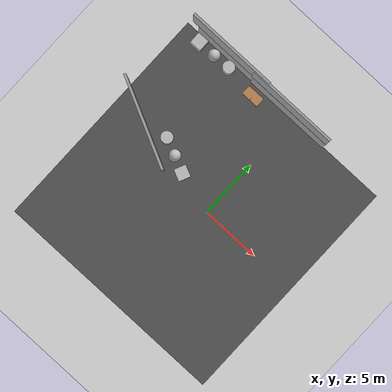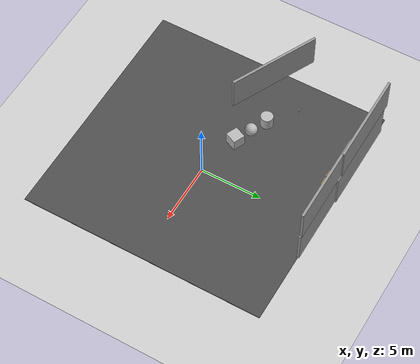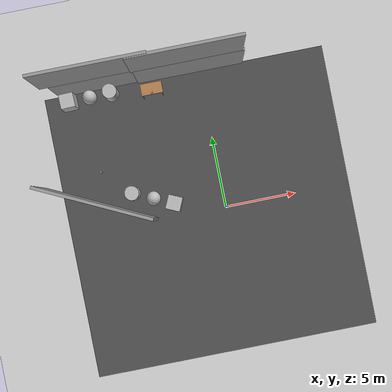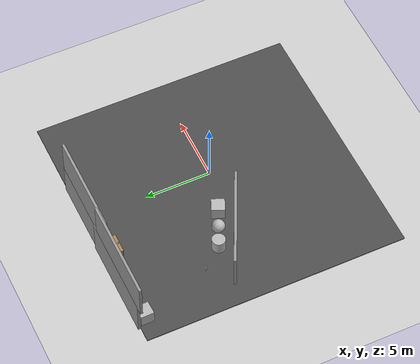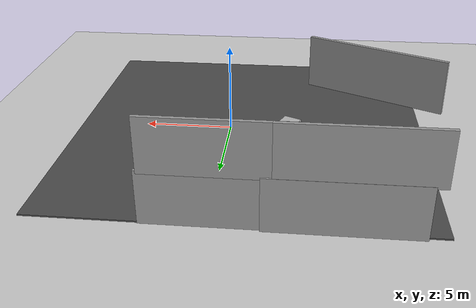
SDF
<sdf version="1.4">
 <world name="default">
  <model name="grey_wall">
   <static>1</static>
   <link name="link">
    <pose>0 0 1.4 0 -0 0</pose>
    <collision name="collision"><geometry><box><size>7.5 0.2 2.8</size></box></geometry></collision>
    <visual name="visual">
     <cast_shadows>0</cast_shadows>
     <geometry><box><size>7.5 0.2 2.8</size></box></geometry>
     <material>
      <script>
       <uri>model://grey_wall/materials/scripts</uri>
       <uri>model://grey_wall/materials/textures</uri>
       <name>vrc/grey_wall</name>
      </script>
     </material>
    </visual>
    <velocity_decay><linear>0</linear><angular>0</angular></velocity_decay>
   </link>
   <pose>-6.2652 9.99263 0 0 -0 0</pose>
  </model>
  <model name="grey_wall_1">
   <static>1</static>
   <link name="link">
    <pose>0 0 1.4 0 -0 0</pose>
    <collision name="collision"><geometry><box><size>7.5 0.2 2.8</size></box></geometry></collision>
    <visual name="visual">
     <cast_shadows>0</cast_shadows>
     <geometry><box><size>7.5 0.2 2.8</size></box></geometry>
     <material>
      <script>
       <uri>model://grey_wall/materials/scripts</uri>
       <uri>model://grey_wall/materials/textures</uri>
       <name>vrc/grey_wall</name>
      </script>
     </material>
    </visual>
    <velocity_decay><linear>0</linear><angular>0</angular></velocity_decay>
   </link>
   <pose>-0.62492 9.89016 0 0 -0 0</pose>
  </model>
  <model name="grey_wall_3">
   <static>1</static>
   <link name="link">
    <pose>0 0 1.4 0 -0 0</pose>
    <collision name="collision"><geometry><box><size>7.5 0.2 2.8</size></box></geometry></collision>
    <visual name="visual">
     <cast_shadows>0</cast_shadows>
     <geometry><box><size>7.5 0.2 2.8</size></box></geometry>
     <material>
      <script>
       <uri>model://grey_wall/materials/scripts</uri>
       <uri>model://grey_wall/materials/textures</uri>
       <name>vrc/grey_wall</name>
      </script>
     </material>
    </visual>
    <velocity_decay><linear>0</linear><angular>0</angular></velocity_decay>
   </link>
   <pose>-0.749566 9.90289 2.65655 0 -0 0</pose>
  </model>
  <model name="grey_wall_7">
   <static>1</static>
   <link name="link">
    <pose>0 0 1.4 0 -0 0</pose>
    <collision name="collision"><geometry><box><size>7.5 0.2 2.8</size></box></geometry></collision>
    <visual name="visual">
     <cast_shadows>0</cast_shadows>
     <geometry><box><size>7.5 0.2 2.8</size></box></geometry>
     <material>
      <script>
       <uri>model://grey_wall/materials/scripts</uri>
       <uri>model://grey_wall/materials/textures</uri>
       <name>vrc/grey_wall</name>
      </script>
     </material>
    </visual>
    <velocity_decay><linear>0</linear><angular>0</angular></velocity_decay>
   </link>
   <pose>-6.79059 9.98229 2.69033 0 -0 0</pose>
  </model>
  <model name="textured_shapes_3">
   <pose>-7.85661 9.33609 0.55 0 0 -1.54191</pose>
   <link name="box">
    <pose>0 -1.5 0 0 -0 0</pose>
    <collision name="collision"><geometry><box><size>1 1 1</size></box></geometry></collision>
    <visual name="visual">
     <geometry><box><size>1 1 1</size></box></geometry>
     <material>
      <script>
       <uri>model://textured_shapes/materials/scripts</uri>
       <uri>model://textured_shapes/materials/textures</uri>
       <name>TexturedShape/Squares</name>
      </script>
     </material>
    </visual>
    <velocity_decay><linear>0</linear><angular>0</angular></velocity_decay>
    <inertial>
     <inertia><ixx>1</ixx><ixy>0</ixy><ixz>0</ixz><iyy>1</iyy><iyz>0</iyz><izz>1</izz></inertia>
     <mass>1</mass>
    </inertial>
   </link>
   <link name="sphere">
    <collision name="collision"><geometry><sphere><radius>0.5</radius></sphere></geometry></collision>
    <visual name="visual">
     <geometry><sphere><radius>0.5</radius></sphere></geometry>
     <material>
      <script>
       <uri>model://textured_shapes/materials/scripts</uri>
       <uri>model://textured_shapes/materials/textures</uri>
       <name>TexturedShape/Squares</name>
      </script>
     </material>
    </visual>
    <velocity_decay><linear>0</linear><angular>0</angular></velocity_decay>
    <inertial>
     <inertia><ixx>1</ixx><ixy>0</ixy><ixz>0</ixz><iyy>1</iyy><iyz>0</iyz><izz>1</izz></inertia>
     <mass>1</mass>
    </inertial>
   </link>
   <link name="cylinder">
    <pose>0 1.5 0 0 -0 0</pose>
    <collision name="collision">
     <geometry><cylinder><radius>0.5</radius><length>1</length></cylinder></geometry>
    </collision>
    <visual name="visual">
     <geometry><cylinder><radius>0.5</radius><length>1</length></cylinder></geometry>
     <material>
      <script>
       <uri>model://textured_shapes/materials/scripts</uri>
       <uri>model://textured_shapes/materials/textures</uri>
       <name>TexturedShape/Squares</name>
      </script>
     </material>
    </visual>
    <velocity_decay><linear>0</linear><angular>0</angular></velocity_decay>
    <inertial>
     <inertia><ixx>1</ixx><ixy>0</ixy><ixz>0</ixz><iyy>1</iyy><iyz>0</iyz><izz>1</izz></inertia>
     <mass>1</mass>
    </inertial>
   </link>
   <static>0</static>
  </model>
  <model name="ground_plane">
   <static>1</static>
   <link name="link">
    <collision name="collision">
     <geometry><plane><normal>0 0 1</normal><size>100 100</size></plane></geometry>
     <surface><friction><ode><mu>100</mu><mu2>50</mu2></ode></friction></surface>
    </collision>
    <visual name="visual">
     <cast_shadows>0</cast_shadows>
     <geometry><plane><normal>0 0 1</normal><size>100 100</size></plane></geometry>
     <material>
      <script><uri>file://media/materials/scripts/gazebo.material</uri><name>Gazebo/Grey</name></script>
     </material>
    </visual>
    <velocity_decay><linear>0</linear><angular>0</angular></velocity_decay>
   </link>
   <pose>-5 8 0 0 -0 0</pose>
  </model>
  <model name="asphalt_plane">
   <static>1</static>
   <link name="link">
    <collision name="collision"><geometry><box><size>20 20 0.1</size></box></geometry></collision>
    <visual name="visual">
     <cast_shadows>0</cast_shadows>
     <geometry><box><size>20 20 0.1</size></box></geometry>
     <material>
      <script>
       <uri>model://asphalt_plane/materials/scripts</uri>
       <uri>model://asphalt_plane/materials/textures</uri>
       <name>vrc/asphalt</name>
      </script>
     </material>
    </visual>
    <velocity_decay><linear>0</linear><angular>0</angular></velocity_decay>
   </link>
   <pose>-1.12078 -0.103901 0 0 -0 0</pose>
  </model>
  <model name="table">
   <static>1</static>
   <link name="link">
    <collision name="surface">
     <pose>0 0 1 0 -0 0</pose>
     <geometry><box><size>1.5 0.8 0.03</size></box></geometry>
     <surface><friction><ode><mu>0.6</mu><mu2>0.6</mu2></ode></friction></surface>
    </collision>
    <visual name="visual1">
     <pose>0 0 1 0 -0 0</pose>
     <geometry><box><size>1.5 0.8 0.03</size></box></geometry>
     <material>
      <script><uri>file://media/materials/scripts/gazebo.material</uri><name>Gazebo/Wood</name></script>
     </material>
    </visual>
    <collision name="front_left_leg">
     <pose>0.68 0.38 0.5 0 -0 0</pose>
     <geometry><cylinder><radius>0.02</radius><length>1</length></cylinder></geometry>
    </collision>
    <visual name="front_left_leg">
     <pose>0.68 0.38 0.5 0 -0 0</pose>
     <geometry><cylinder><radius>0.02</radius><length>1</length></cylinder></geometry>
     <material>
      <script><uri>file://media/materials/scripts/gazebo.material</uri><name>Gazebo/Grey</name></script>
     </material>
    </visual>
    <collision name="front_right_leg">
     <pose>0.68 -0.38 0.5 0 -0 0</pose>
     <geometry><cylinder><radius>0.02</radius><length>1</length></cylinder></geometry>
    </collision>
    <visual name="front_right_leg">
     <pose>0.68 -0.38 0.5 0 -0 0</pose>
     <geometry><cylinder><radius>0.02</radius><length>1</length></cylinder></geometry>
     <material>
      <script><uri>file://media/materials/scripts/gazebo.material</uri><name>Gazebo/Grey</name></script>
     </material>
    </visual>
    <collision name="back_right_leg">
     <pose>-0.68 -0.38 0.5 0 -0 0</pose>
     <geometry><cylinder><radius>0.02</radius><length>1</length></cylinder></geometry>
    </collision>
    <visual name="back_right_leg">
     <pose>-0.68 -0.38 0.5 0 -0 0</pose>
     <geometry><cylinder><radius>0.02</radius><length>1</length></cylinder></geometry>
     <material>
      <script><uri>file://media/materials/scripts/gazebo.material</uri><name>Gazebo/Grey</name></script>
     </material>
    </visual>
    <collision name="back_left_leg">
     <pose>-0.68 0.38 0.5 0 -0 0</pose>
     <geometry><cylinder><radius>0.02</radius><length>1</length></cylinder></geometry>
    </collision>
    <visual name="back_left_leg">
     <pose>-0.68 0.38 0.5 0 -0 0</pose>
     <geometry><cylinder><radius>0.02</radius><length>1</length></cylinder></geometry>
     <material>
      <script><uri>file://media/materials/scripts/gazebo.material</uri><name>Gazebo/Grey</name></script>
     </material>
    </visual>
    <velocity_decay><linear>0</linear><angular>0</angular></velocity_decay>
   </link>
   <pose>-3.47123 9 0 0 -0 0</pose>
  </model>
  <model name="beer_0">
   <link name="link">
    <pose>0 0 0.115 0 -0 0</pose>
    <inertial>
     <mass>0.39</mass>
     <inertia><ixx>0.00058</ixx><ixy>0</ixy><ixz>0</ixz><iyy>0.00058</iyy><iyz>0</iyz><izz>0.00019</izz></inertia>
    </inertial>
    <collision name="collision">
     <geometry><cylinder><radius>0.055</radius><length>0.23</length></cylinder></geometry>
    </collision>
    <visual name="visual">
     <geometry><cylinder><radius>0.055</radius><length>0.23</length></cylinder></geometry>
     <material>
      <script>
       <uri>model://beer/materials/scripts</uri>
       <uri>model://beer/materials/textures</uri>
       <name>Beer/Diffuse</name>
      </script>
     </material>
    </visual>
    <velocity_decay><linear>0</linear><angular>0</angular></velocity_decay>
   </link>
   <pose>-3.49429 8.69597 1.01499 1e-06 -2.7e-05 0.00096</pose>
   <static>0</static>
  </model>
  <model name="beer_1">
   <link name="link">
    <pose>0 0 0.115 0 -0 0</pose>
    <inertial>
     <mass>0.39</mass>
     <inertia><ixx>0.00058</ixx><ixy>0</ixy><ixz>0</ixz><iyy>0.00058</iyy><iyz>0</iyz><izz>0.00019</izz></inertia>
    </inertial>
    <collision name="collision">
     <geometry><cylinder><radius>0.055</radius><length>0.23</length></cylinder></geometry>
    </collision>
    <visual name="visual">
     <geometry><cylinder><radius>0.055</radius><length>0.23</length></cylinder></geometry>
     <material>
      <script>
       <uri>model://beer/materials/scripts</uri>
       <uri>model://beer/materials/textures</uri>
       <name>Beer/Diffuse</name>
      </script>
     </material>
    </visual>
    <velocity_decay><linear>0</linear><angular>0</angular></velocity_decay>
   </link>
   <pose>-7.99996 4.00002 0.774992 2.3e-05 1.9e-05 0.008479</pose>
   <static>0</static>
  </model>
  <model name="textured_shapes_5">
   <pose>-4.83559 1.56038 0.55 0 -0 1.14831</pose>
   <link name="box">
    <pose>0 -1.5 0 0 -0 0</pose>
    <collision name="collision"><geometry><box><size>1 1 1</size></box></geometry></collision>
    <visual name="visual">
     <geometry><box><size>1 1 1</size></box></geometry>
     <material>
      <script>
       <uri>model://textured_shapes/materials/scripts</uri>
       <uri>model://textured_shapes/materials/textures</uri>
       <name>TexturedShape/Squares</name>
      </script>
     </material>
    </visual>
    <velocity_decay><linear>0</linear><angular>0</angular></velocity_decay>
    <inertial>
     <inertia><ixx>1</ixx><ixy>0</ixy><ixz>0</ixz><iyy>1</iyy><iyz>0</iyz><izz>1</izz></inertia>
     <mass>1</mass>
    </inertial>
   </link>
   <link name="sphere">
    <collision name="collision"><geometry><sphere><radius>0.5</radius></sphere></geometry></collision>
    <visual name="visual">
     <geometry><sphere><radius>0.5</radius></sphere></geometry>
     <material>
      <script>
       <uri>model://textured_shapes/materials/scripts</uri>
       <uri>model://textured_shapes/materials/textures</uri>
       <name>TexturedShape/Squares</name>
      </script>
     </material>
    </visual>
    <velocity_decay><linear>0</linear><angular>0</angular></velocity_decay>
    <inertial>
     <inertia><ixx>1</ixx><ixy>0</ixy><ixz>0</ixz><iyy>1</iyy><iyz>0</iyz><izz>1</izz></inertia>
     <mass>1</mass>
    </inertial>
   </link>
   <link name="cylinder">
    <pose>0 1.5 0 0 -0 0</pose>
    <collision name="collision">
     <geometry><cylinder><radius>0.5</radius><length>1</length></cylinder></geometry>
    </collision>
    <visual name="visual">
     <geometry><cylinder><radius>0.5</radius><length>1</length></cylinder></geometry>
     <material>
      <script>
       <uri>model://textured_shapes/materials/scripts</uri>
       <uri>model://textured_shapes/materials/textures</uri>
       <name>TexturedShape/Squares</name>
      </script>
     </material>
    </visual>
    <velocity_decay><linear>0</linear><angular>0</angular></velocity_decay>
    <inertial>
     <inertia><ixx>1</ixx><ixy>0</ixy><ixz>0</ixz><iyy>1</iyy><iyz>0</iyz><izz>1</izz></inertia>
     <mass>1</mass>
    </inertial>
   </link>
   <static>0</static>
  </model>
  <model name="grey_wall_0">
   <static>1</static>
   <link name="link">
    <pose>0 0 1.4 0 -0 0</pose>
    <collision name="collision"><geometry><box><size>7.5 0.2 2.8</size></box></geometry></collision>
    <visual name="visual">
     <cast_shadows>0</cast_shadows>
     <geometry><box><size>7.5 0.2 2.8</size></box></geometry>
     <material>
      <script>
       <uri>model://grey_wall/materials/scripts</uri>
       <uri>model://grey_wall/materials/textures</uri>
       <name>vrc/grey_wall</name>
      </script>
     </material>
    </visual>
    <velocity_decay><linear>0</linear><angular>0</angular></velocity_decay>
   </link>
   <pose>-7.89463 1.70955 3.04174 0 0 -0.45171</pose>
  </model>
 </world>
</sdf>
